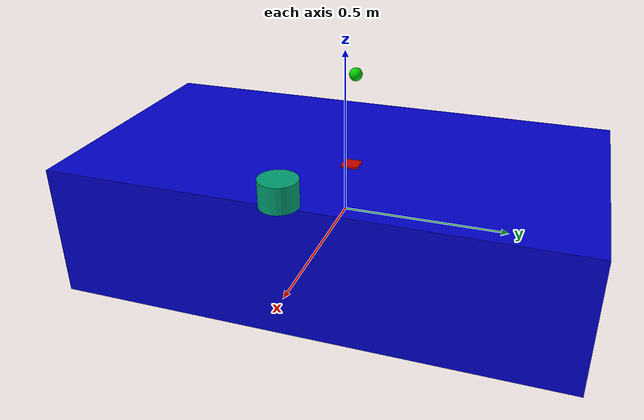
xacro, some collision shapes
<?xml version="1.0"?>
<robot name="my_velomobile" xmlns:xacro="http://www.ros.org/wiki/xacro">

  <xacro:property name="base_link_width" value="0.8"/>
  <xacro:property name="imu_offset_x" value="0.1"/>
  <xacro:property name="imu_offset_z" value="0.2"/>
  <link name="base_link">
    <visual>
      <origin xyz="0 0 0" rpy="0 0 0" />
      <geometry>
        <mesh filename="package://my_velomobile_description/meshes/base_link.stl" scale="1 1 1"/>
      </geometry>
      <material name="blue"/> </visual>
    <collision>
      <origin xyz="0 0 0" rpy="0 0 0" />
      <geometry>
         <box size="${base_link_width} 1.5 0.4"/>
      </geometry>
    </collision>
    <inertial>
        <origin xyz="0 0 0" rpy="0 0 0"/> <mass value="25.0"/> <inertia ixx="1.0" ixy="0.0" ixz="0.0" iyy="1.0" iyz="0.0" izz="1.0"/>
    </inertial>
  </link>

  <link name="imu_link">
      <visual>
          <geometry><box size="0.05 0.05 0.01"/></geometry>
          <material name="red"/>
      </visual>
      <collision>
          <geometry><box size="0.05 0.05 0.01"/></geometry>
      </collision>
       <inertial> <mass value="0.05"/> <inertia ixx="1e-5" iyy="1e-5" izz="1e-5"/> </inertial>
  </link>

  <link name="lidar_link">
    <visual> <geometry><cylinder radius="0.05" length="0.07"/></geometry> </visual>
    <collision> <geometry><cylinder radius="0.05" length="0.07"/></geometry> </collision>
    <inertial> <mass value="0.2"/> <inertia ixx="1e-4" iyy="1e-4" izz="1e-4"/> </inertial>
  </link>

  <link name="gps_antenna_link">
      <visual> <geometry><sphere radius="0.02"/></geometry> <material name="green"/></visual>
      <inertial> <mass value="0.01"/> <inertia ixx="1e-6" iyy="1e-6" izz="1e-6"/> </inertial>
  </link>

  <material name="blue"><color rgba="0 0 0.8 1"/></material>
  <material name="red"><color rgba="0.8 0 0 1"/></material>
  <material name="green"><color rgba="0 0.8 0 1"/></material>

  <joint name="imu_joint" type="fixed">
    <parent link="base_link"/>
    <child link="imu_link"/>
    <origin xyz="${imu_offset_x} 0.05 ${imu_offset_z}" rpy="0 0 0"/>
    </joint>

  <joint name="lidar_joint" type="fixed">
      <parent link="base_link"/>
      <child link="lidar_link"/>
      <origin xyz="0.5 0 0.3" rpy="0 0 0"/>
      </joint>

   <joint name="gps_antenna_joint" type="fixed">
      <parent link="base_link"/>
      <child link="gps_antenna_link"/>
      <origin xyz="-0.1 0 0.4" rpy="0 0 0"/>
  </joint>

  </robot>
